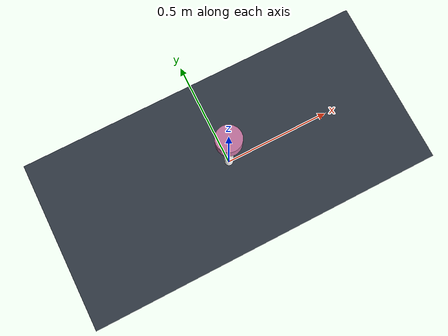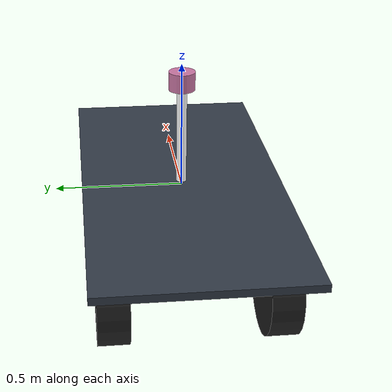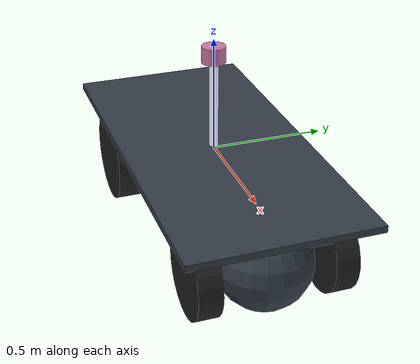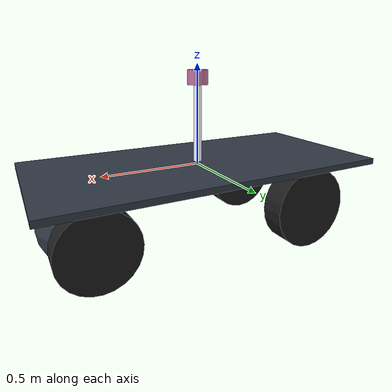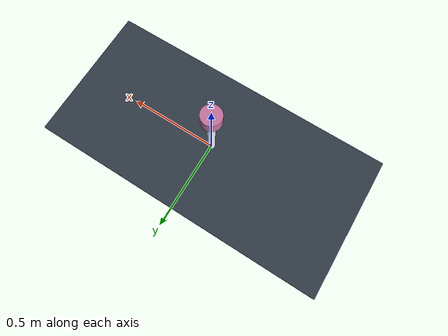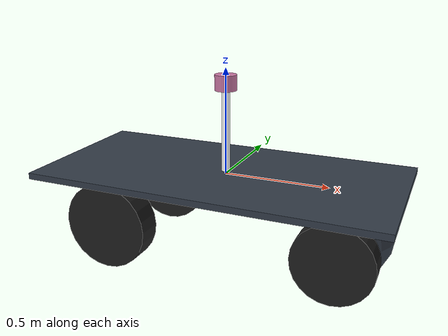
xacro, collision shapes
<?xml version="1.0"?>

<robot name="blue" xmlns:xacro="http://www.ros.org/wiki/xacro">

  <xacro:include filename="$(find blue_description)/urdf/blue_materials.xacro" />
  <xacro:include filename="$(find blue_description)/urdf/blue.gazebo" />
  <xacro:include filename="$(find blue_description)/urdf/macros.xacro" />

  <xacro:base name="base_link" />

  <xacro:bar name="lidar_bar_link" />
  <xacro:generic_join name="lidar_bar_join" child="lidar_bar_link" origin_xyz="0 0 0.2"/>

  <xacro:wheel name="front_right_wheel_link" length="0.1" radius="0.18" />
  <xacro:wheel_join name="front_right_wheel_join" child="front_right_wheel_link" origin_xyz="0.6 0.28 -0.203"/>

  <xacro:wheel name="front_left_wheel_link" length="0.1" radius="0.18" />
  <xacro:wheel_join name="front_left_wheel_join" child="front_left_wheel_link" origin_xyz="0.6 -0.28 -0.203"/>

  <xacro:wheel name="rear_right_wheel_link" length="0.12" radius="0.203" />
  <xacro:wheel_join name="rear_right_wheel_link_join" child="rear_right_wheel_link" origin_xyz="-0.45 0.31 -0.203"/>

  <xacro:wheel name="rear_left_wheel_link" length="0.12" radius="0.203" />
  <xacro:wheel_join name="rear_left_wheel_link_join" child="rear_left_wheel_link" origin_xyz="-0.45 -0.31 -0.203"/>

  <xacro:include filename="$(find velodyne_description)/urdf/VLP-16.urdf.xacro"/>
  <xacro:VLP-16 parent="base_link" name="velodyne" topic="/velodyne_points" hz="10" samples="440">
    <origin xyz="0 0 0.4" rpy="0 0 0" />
  </xacro:VLP-16>

</robot>

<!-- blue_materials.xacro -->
<robot>

  <material name="black">
    <color rgba="0.0 0.0 0.0 1.0"/>
  </material>
  <material name="blue">
    <color rgba="0.203125 0.23828125 0.28515625 1.0"/>
  </material>
  <material name="green">
    <color rgba="0.0 0.8 0.0 1.0"/>
  </material>
  <material name="grey">
    <color rgba="0.2 0.2 0.2 1.0"/>
  </material>
  <material name="orange">
    <color rgba="1.0 0.423529411765 0.0392156862745 1.0"/>
  </material>
  <material name="brown">
    <color rgba="0.870588235294 0.811764705882 0.764705882353 1.0"/>
  </material>
  <material name="red">
    <color rgba="0.80078125 0.12890625 0.1328125 1.0"/>
  </material>
  <material name="white">
    <color rgba="1.0 1.0 1.0 1.0"/>
  </material>

</robot>

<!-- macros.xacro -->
<robot>

  <macro name="base" params="name">
    <link name="${name}">

    <!-- pose and inertial -->
    <pose>-0.45 0 -0.203 0 0 0</pose>

    <inertial>
      <mass value="5"/>
      <origin rpy="0 0 0" xyz="-0.45 0 -0.203"/>
      <inertia ixx="0.0395416666667" ixy="0" ixz="0" iyy="0.106208333333" iyz="0" izz="0.106208333333"/>
    </inertial>

    <collision name="${name}_collision">
      <geometry>
        <box size="1.672 0.797 0.03"/>
      </geometry>
    </collision>

    <visual name="${name}_visual">
      <origin rpy="0 0 0" xyz="0 0 0"/>
      <geometry>
        <box size="1.672 0.797 0.03"/>
      </geometry>
      <material name="blue"/>
    </visual>

    <collision name="${name}_caster_collision">
      <origin rpy=" 0 0 0" xyz="0.6 0 -0.203"/>
      <geometry>
        <sphere radius="0.203"/>
      </geometry>
      <surface>
        <friction>
          <ode>
            <mu>0</mu>
            <mu2>0</mu2>
            <slip1>1.0</slip1>
            <slip2>1.0</slip2>
          </ode>
        </friction>
      </surface>
    </collision>

    </link>
  </macro>

  <macro name="wheel" params="name length radius">
    <link name="${name}">

    <inertial>
      <mass value="0.2"/>
      <origin rpy="0 1.5707 1.5707" xyz="0 0 0"/>
      <inertia ixx="0.00052666666" ixy="0" ixz="0" iyy="0.00052666666" iyz="0" izz="0.001"/>
    </inertial>

    <collision name="${name}_collision">
      <origin rpy="0 1.5707 1.5707" xyz="0 0 0" />
      <geometry>
        <cylinder length="${length}" radius="${radius}"/>
      </geometry>
    </collision>

    <visual name="${name}_visual">
      <origin rpy="0 1.5707 1.5707" xyz="0 0 0"/>
      <geometry>
        <cylinder length="${length}" radius="${radius}"/>
      </geometry>
    </visual>

    </link>
  </macro>

  <macro name="wheel_join" params="name child origin_xyz">
      <joint name="${name}" type="continuous">
        <origin rpy="0 0 0" xyz="${origin_xyz}"/>
        <child link="${child}" />
        <parent link="base_link"/>
        <axis rpy="0 0 0" xyz="0 1 0"/>
        <limit effort="10000" velocity="1000"/>
        <joint_properties damping="1.0" friction="1.0" />
    </joint>
  </macro>

  <macro name="caster" params="name">
    <link name="${name}">
      <inertial>
        <mass value="0.1"/>
        <origin rpy="0 0 0" xyz="0 0 0"/>
        <inertia ixx="0" ixy="0" ixz="0" iyy="0" iyz="0" izz="0"/>
      </inertial>

      <collision name="${name}_collision">
        <origin rpy="0 1.5707 1.5707" xyz="0 0 0" />
        <geometry>
          <sphere radius="0.203"/>
        </geometry>
        <surface>
          <friction>
            <ode>
              <mu>0</mu>
              <mu2>0</mu2>
              <slip1>1.0</slip1>
              <slip2>1.0</slip2>
            </ode>
          </friction>
        </surface>
      </collision>
    </link>
  </macro>

  <macro name="bar" params="name">
    <link name="${name}">
      <inertial>
        <mass value="0.1"/>
        <origin rpy="0 0 0" xyz="0 0 0"/>
        <inertia ixx="0" ixy="0" ixz="0" iyy="0" iyz="0" izz="0"/>
      </inertial>

      <collision name="${name}_collision">
        <origin rpy="0 0 0" xyz="0 0 0" />
          <geometry>
            <cylinder length="0.4" radius="0.02"/>
          </geometry>
      </collision>

      <visual name="${name}_visual">
        <origin rpy="0 0 0" xyz="0 0 0"/>
        <geometry>
          <cylinder length="0.4" radius="0.02"/>
        </geometry>
        <material name="white"/>
      </visual>
    </link>
  </macro>

  <macro name="generic_join" params="name child origin_xyz">
      <joint name="${name}" type="continuous">
        <origin rpy="0 0 0" xyz="${origin_xyz}"/>
        <child link="${child}" />
        <parent link="base_link"/>
    </joint>
  </macro>

</robot>

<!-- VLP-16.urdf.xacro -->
<robot xmlns:xacro="http://www.ros.org/wiki/xacro" name="VLP-16">
  <xacro:property name="M_PI" value="3.1415926535897931" />
  <xacro:macro name="VLP-16" params="*origin is_sim:=true parent:=base_link name:=velodyne tf_prefix:='' topic:=/velodyne_points organize_cloud:=false hz:=10 lasers:=16 samples:=1875 collision_range:=0.3 min_range:=0.0 max_range:=100.0 noise:=0.008 min_angle:=-${M_PI} max_angle:=${M_PI} gpu:=false">

    <joint name="${name}_base_mount_joint" type="fixed">
      <xacro:insert_block name="origin" />
      <parent link="${parent}"/>
      <child link="${name}_base_link"/>
    </joint>

    <link name="${name}_base_link">
      <inertial>
        <mass value="0.83"/>
        <origin xyz="0 0 0.03585"/>
        <inertia ixx="${(0.83 * (3.0*0.0516*0.0516 + 0.0717*0.0717)) / 12.0}" ixy="0" ixz="0"
          iyy="${(0.83 * (3.0*0.0516*0.0516 + 0.0717*0.0717)) / 12.0}" iyz="0"
          izz="${0.5 * 0.83 * (0.0516*0.0516)}"/>
      </inertial>
      <visual>
        <geometry>
          <mesh filename="package://velodyne_description/meshes/VLP16_base_1.dae" />
        </geometry>
      </visual>
      <visual>
        <geometry>
          <mesh filename="package://velodyne_description/meshes/VLP16_base_2.dae" />
        </geometry>
      </visual>
      <collision>
        <origin rpy="0 0 0" xyz="0 0 0.03585"/>
        <geometry>
          <cylinder radius="0.0516" length="0.0717"/>
        </geometry>
      </collision>
    </link>

    <joint name="${name}_base_scan_joint" type="fixed" >
      <origin xyz="0 0 0.0377" rpy="0 0 0" />
      <parent link="${name}_base_link" />
      <child link="${name}"/>
    </joint>

    <link name="${name}">
      <inertial>
        <mass value="0.01"/>
        <origin xyz="0 0 0"/>
        <inertia ixx="1e-7" ixy="0" ixz="0" iyy="1e-7" iyz="0" izz="1e-7"/>
      </inertial>
      <visual>
        <origin xyz="0 0 -0.0377" />
        <geometry>
          <mesh filename="package://velodyne_description/meshes/VLP16_scan.dae" />
        </geometry>
      </visual>
      <collision>
        <geometry>
          <sphere radius="0"/>
        </geometry>
      </collision>
    </link>

    <!-- Gazebo requires the velodyne_gazebo_plugins package -->
    <xacro:if value="${is_sim}">
        <gazebo reference="${name}">
            <xacro:if value="${gpu}">
                <sensor type="gpu_ray" name="${name}-VLP16">
                <pose>0 0 0 0 0 0</pose>
                <visualize>false</visualize>
                <update_rate>${hz}</update_rate>
                <ray>
                    <scan>
                    <horizontal>
                        <samples>${samples}</samples>
                        <resolution>1</resolution>
                        <min_angle>${min_angle}</min_angle>
                        <max_angle>${max_angle}</max_angle>
                    </horizontal>
                    <vertical>
                        <samples>${lasers}</samples>
                        <resolution>1</resolution>
                        <min_angle>-${15.0*M_PI/180.0}</min_angle>
                        <max_angle> ${15.0*M_PI/180.0}</max_angle>
                    </vertical>
                    </scan>
                    <range>
                    <min>${collision_range}</min>
                    <max>${max_range+1}</max>
                    <resolution>0.001</resolution>
                    </range>
                    <noise>
                    <type>gaussian</type>
                    <mean>0.0</mean>
                    <stddev>0.0</stddev>
                    </noise>
                </ray>
                <plugin name="gazebo_ros_laser_controller" filename="libgazebo_ros_velodyne_laser.so">
                    <ros>
                    <namespace>/${name}</namespace>
                    <remapping>~/out:=${topic}</remapping>
                    </ros>
                    <tf_prefix>${tf_prefix}</tf_prefix>
                    <frame_name>${name}</frame_name>
                    <organize_cloud>${organize_cloud}</organize_cloud>
                    <min_range>${min_range}</min_range>
                    <max_range>${max_range}</max_range>
                    <gaussian_noise>${noise}</gaussian_noise>
                </plugin>
                </sensor>
            </xacro:if>
            <xacro:unless value="${gpu}">
                <sensor type="ray" name="${name}-VLP16">
                <pose>0 0 0 0 0 0</pose>
                <visualize>false</visualize>
                <update_rate>${hz}</update_rate>
                <ray>
                    <scan>
                    <horizontal>
                        <samples>${samples}</samples>
                        <resolution>1</resolution>
                        <min_angle>${min_angle}</min_angle>
                        <max_angle>${max_angle}</max_angle>
                    </horizontal>
                    <vertical>
                        <samples>${lasers}</samples>
                        <resolution>1</resolution>
                        <min_angle>-${15.0*M_PI/180.0}</min_angle>
                        <max_angle> ${15.0*M_PI/180.0}</max_angle>
                    </vertical>
                    </scan>
                    <range>
                    <min>${collision_range}</min>
                    <max>${max_range+1}</max>
                    <resolution>0.001</resolution>
                    </range>
                    <noise>
                    <type>gaussian</type>
                    <mean>0.0</mean>
                    <stddev>0.0</stddev>
                    </noise>
                </ray>
                <plugin name="gazebo_ros_laser_controller" filename="libgazebo_ros_velodyne_laser.so">
                    <ros>
                    <namespace>/${name}</namespace>
                    <remapping>~/out:=${topic}</remapping>
                    </ros>
                    <tf_prefix>${tf_prefix}</tf_prefix>
                    <frame_name>${name}</frame_name>
                    <organize_cloud>${organize_cloud}</organize_cloud>
                    <min_range>${min_range}</min_range>
                    <max_range>${max_range}</max_range>
                    <gaussian_noise>${noise}</gaussian_noise>
                </plugin>
                </sensor>
            </xacro:unless>
        </gazebo>
    </xacro:if>

  </xacro:macro>
</robot>
